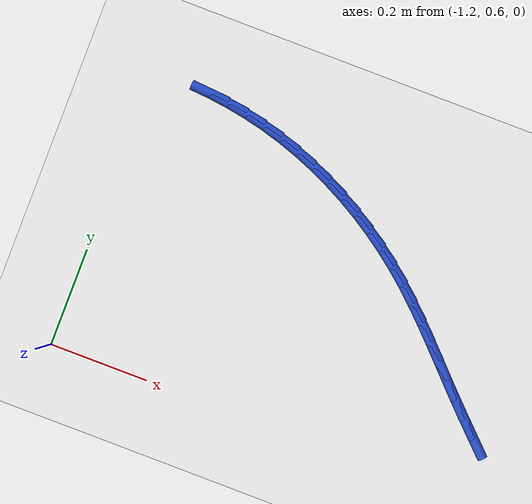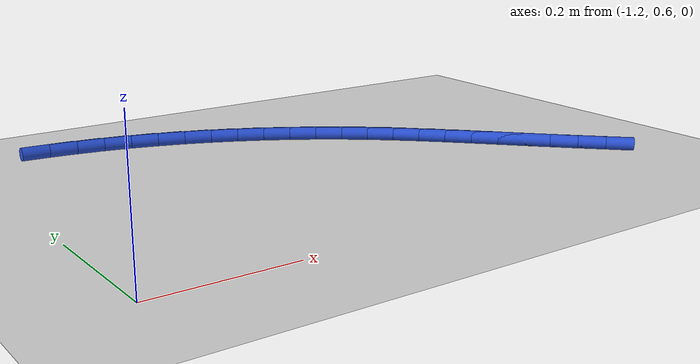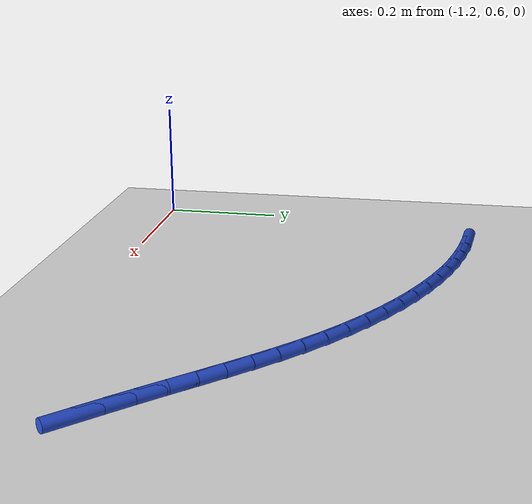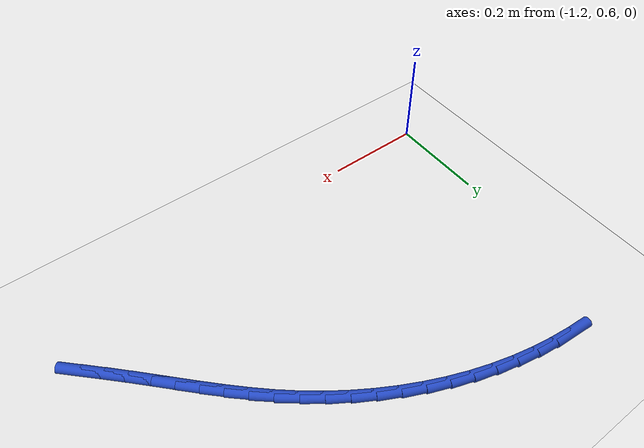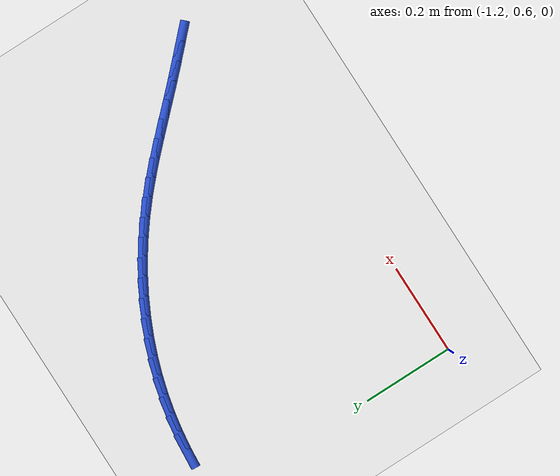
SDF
<sdf version="1.6">
 <world name="default">
  <model name="ground_plane">
   <static>1</static>
   <link name="link">
    <collision name="collision">
     <geometry><plane><normal>0 0 1</normal><size>100 100</size></plane></geometry>
     <surface><friction><ode><mu>100</mu><mu2>50</mu2></ode></friction></surface>
    </collision>
    <visual name="visual">
     <cast_shadows>0</cast_shadows>
     <geometry><plane><normal>0 0 1</normal><size>100 100</size></plane></geometry>
     <material>
      <script><uri>file://media/materials/scripts/gazebo.material</uri><name>Gazebo/WhiteGlow</name></script>
     </material>
    </visual>
   </link>
  </model>
  <model name="line">
   <link name="link_20">
    <pose>-0.3577589061286057 0.7191104925070084 0.01 0 1.57 -0.7757583546364858</pose>
    <collision name="collision">
     <geometry><cylinder><radius>0.01</radius><length>0.08</length></cylinder></geometry>
    </collision>
    <visual name="visual">
     <material>
      <script><name>Gazebo/Blue</name><uri>file://media/materials/scripts/gazebo.material</uri></script>
     </material>
     <geometry><cylinder><radius>0.01</radius><length>0.08</length></cylinder></geometry>
    </visual>
   </link>
   <link name="link_21">
    <pose>-0.38796208765742546 0.7487369102748199 0.01 0 1.57 -0.7827255534395113</pose>
    <collision name="collision">
     <geometry><cylinder><radius>0.01</radius><length>0.08</length></cylinder></geometry>
    </collision>
    <visual name="visual">
     <material>
      <script><name>Gazebo/Blue</name><uri>file://media/materials/scripts/gazebo.material</uri></script>
     </material>
     <geometry><cylinder><radius>0.01</radius><length>0.08</length></cylinder></geometry>
    </visual>
   </link>
   <link name="link_22">
    <pose>-0.41784457719016516 0.7784600967051386 0.01 0 1.57 -0.7942603477439405</pose>
    <collision name="collision">
     <geometry><cylinder><radius>0.01</radius><length>0.08</length></cylinder></geometry>
    </collision>
    <visual name="visual">
     <material>
      <script><name>Gazebo/Blue</name><uri>file://media/materials/scripts/gazebo.material</uri></script>
     </material>
     <geometry><cylinder><radius>0.01</radius><length>0.08</length></cylinder></geometry>
    </visual>
   </link>
   <link name="link_23">
    <pose>-0.44722399234699994 0.808364913408346 0.01 0 1.57 -0.8010249459513406</pose>
    <collision name="collision">
     <geometry><cylinder><radius>0.01</radius><length>0.08</length></cylinder></geometry>
    </collision>
    <visual name="visual">
     <material>
      <script><name>Gazebo/Blue</name><uri>file://media/materials/scripts/gazebo.material</uri></script>
     </material>
     <geometry><cylinder><radius>0.01</radius><length>0.08</length></cylinder></geometry>
    </visual>
   </link>
   <link name="link_24">
    <pose>-0.476250641501954 0.838313226497959 0.01 0 1.57 -0.7988324356967438</pose>
    <collision name="collision">
     <geometry><cylinder><radius>0.01</radius><length>0.08</length></cylinder></geometry>
    </collision>
    <visual name="visual">
     <material>
      <script><name>Gazebo/Blue</name><uri>file://media/materials/scripts/gazebo.material</uri></script>
     </material>
     <geometry><cylinder><radius>0.01</radius><length>0.08</length></cylinder></geometry>
    </visual>
   </link>
   <link name="link_25">
    <pose>-0.5052188235792384 0.8680703883013109 0.01 0 1.57 -0.7875572953811117</pose>
    <collision name="collision">
     <geometry><cylinder><radius>0.01</radius><length>0.08</length></cylinder></geometry>
    </collision>
    <visual name="visual">
     <material>
      <script><name>Gazebo/Blue</name><uri>file://media/materials/scripts/gazebo.material</uri></script>
     </material>
     <geometry><cylinder><radius>0.01</radius><length>0.08</length></cylinder></geometry>
    </visual>
   </link>
   <link name="link_26">
    <pose>-0.5344234138797878 0.8974013648127438 0.01 0 1.57 -0.7671465289753625</pose>
    <collision name="collision">
     <geometry><cylinder><radius>0.01</radius><length>0.08</length></cylinder></geometry>
    </collision>
    <visual name="visual">
     <material>
      <script><name>Gazebo/Blue</name><uri>file://media/materials/scripts/gazebo.material</uri></script>
     </material>
     <geometry><cylinder><radius>0.01</radius><length>0.08</length></cylinder></geometry>
    </visual>
   </link>
   <link name="link_27">
    <pose>-0.5641592877045366 0.9260711220265999 0.01 0 1.57 -0.7376329778385887</pose>
    <collision name="collision">
     <geometry><cylinder><radius>0.01</radius><length>0.08</length></cylinder></geometry>
    </collision>
    <visual name="visual">
     <material>
      <script><name>Gazebo/Blue</name><uri>file://media/materials/scripts/gazebo.material</uri></script>
     </material>
     <geometry><cylinder><radius>0.01</radius><length>0.08</length></cylinder></geometry>
    </visual>
   </link>
   <link name="link_28">
    <pose>-0.5947213203544199 0.9538446259372217 0.01 0 1.57 -0.6991984845940142</pose>
    <collision name="collision">
     <geometry><cylinder><radius>0.01</radius><length>0.08</length></cylinder></geometry>
    </collision>
    <visual name="visual">
     <material>
      <script><name>Gazebo/Blue</name><uri>file://media/materials/scripts/gazebo.material</uri></script>
     </material>
     <geometry><cylinder><radius>0.01</radius><length>0.08</length></cylinder></geometry>
    </visual>
   </link>
   <link name="link_29">
    <pose>-0.6264038226670672 0.9804870489868515 0.01 0 1.57 -0.6546484537541121</pose>
    <collision name="collision">
     <geometry><cylinder><radius>0.01</radius><length>0.08</length></cylinder></geometry>
    </collision>
    <visual name="visual">
     <material>
      <script><name>Gazebo/Blue</name><uri>file://media/materials/scripts/gazebo.material</uri></script>
     </material>
     <geometry><cylinder><radius>0.01</radius><length>0.08</length></cylinder></geometry>
    </visual>
   </link>
   <link name="link_30">
    <pose>-0.6593883280496291 1.0058048110530569 0.01 0 1.57 -0.6094801853400681</pose>
    <collision name="collision">
     <geometry><cylinder><radius>0.01</radius><length>0.08</length></cylinder></geometry>
    </collision>
    <visual name="visual">
     <material>
      <script><name>Gazebo/Blue</name><uri>file://media/materials/scripts/gazebo.material</uri></script>
     </material>
     <geometry><cylinder><radius>0.01</radius><length>0.08</length></cylinder></geometry>
    </visual>
   </link>
   <link name="link_31">
    <pose>-0.6936080502866613 1.0296951529119627 0.01 0 1.57 -0.564180259478845</pose>
    <collision name="collision">
     <geometry><cylinder><radius>0.01</radius><length>0.08</length></cylinder></geometry>
    </collision>
    <visual name="visual">
     <material>
      <script><name>Gazebo/Blue</name><uri>file://media/materials/scripts/gazebo.material</uri></script>
     </material>
     <geometry><cylinder><radius>0.01</radius><length>0.08</length></cylinder></geometry>
    </visual>
   </link>
   <link name="link_32">
    <pose>-0.7289631097116125 1.0520674190024433 0.01 0 1.57 -0.5185027385650475</pose>
    <collision name="collision">
     <geometry><cylinder><radius>0.01</radius><length>0.08</length></cylinder></geometry>
    </collision>
    <visual name="visual">
     <material>
      <script><name>Gazebo/Blue</name><uri>file://media/materials/scripts/gazebo.material</uri></script>
     </material>
     <geometry><cylinder><radius>0.01</radius><length>0.08</length></cylinder></geometry>
    </visual>
   </link>
   <link name="link_33">
    <pose>-0.7653536266579317 1.072830953763373 0.01 0 1.57 -0.47220728353582436</pose>
    <collision name="collision">
     <geometry><cylinder><radius>0.01</radius><length>0.08</length></cylinder></geometry>
    </collision>
    <visual name="visual">
     <material>
      <script><name>Gazebo/Blue</name><uri>file://media/materials/scripts/gazebo.material</uri></script>
     </material>
     <geometry><cylinder><radius>0.01</radius><length>0.08</length></cylinder></geometry>
    </visual>
   </link>
   <link name="link_34">
    <pose>-0.8026797214590681 1.0918951016336251 0.01 0 1.57 -0.42505917483939354</pose>
    <collision name="collision">
     <geometry><cylinder><radius>0.01</radius><length>0.08</length></cylinder></geometry>
    </collision>
    <visual name="visual">
     <material>
      <script><name>Gazebo/Blue</name><uri>file://media/materials/scripts/gazebo.material</uri></script>
     </material>
     <geometry><cylinder><radius>0.01</radius><length>0.08</length></cylinder></geometry>
    </visual>
   </link>
   <link name="link_35">
    <pose>-0.8408415144484703 1.1091692070520742 0.01 0 1.57 -0.3768300582452592</pose>
    <collision name="collision">
     <geometry><cylinder><radius>0.01</radius><length>0.08</length></cylinder></geometry>
    </collision>
    <visual name="visual">
     <material>
      <script><name>Gazebo/Blue</name><uri>file://media/materials/scripts/gazebo.material</uri></script>
     </material>
     <geometry><cylinder><radius>0.01</radius><length>0.08</length></cylinder></geometry>
    </visual>
   </link>
   <link name="link_36">
    <pose>-0.8797391259595877 1.124562614457594 0.01 0 1.57 -0.3272996272543197</pose>
    <collision name="collision">
     <geometry><cylinder><radius>0.01</radius><length>0.08</length></cylinder></geometry>
    </collision>
    <visual name="visual">
     <material>
      <script><name>Gazebo/Blue</name><uri>file://media/materials/scripts/gazebo.material</uri></script>
     </material>
     <geometry><cylinder><radius>0.01</radius><length>0.08</length></cylinder></geometry>
    </visual>
   </link>
   <link name="link_37">
    <pose>-0.9192726763258692 1.1379846682890589 0.01 0 1.57 -0.27625979984172294</pose>
    <collision name="collision">
     <geometry><cylinder><radius>0.01</radius><length>0.08</length></cylinder></geometry>
    </collision>
    <visual name="visual">
     <material>
      <script><name>Gazebo/Blue</name><uri>file://media/materials/scripts/gazebo.material</uri></script>
     </material>
     <geometry><cylinder><radius>0.01</radius><length>0.08</length></cylinder></geometry>
    </visual>
   </link>
   <link name="link_38">
    <pose>-0.9593423002767159 1.1493447749007104 0.01 0 1.57 -0.22440984350333143</pose>
    <collision name="collision">
     <geometry><cylinder><radius>0.01</radius><length>0.08</length></cylinder></geometry>
    </collision>
    <visual name="visual">
     <material>
      <script><name>Gazebo/Blue</name><uri>file://media/materials/scripts/gazebo.material</uri></script>
     </material>
     <geometry><cylinder><radius>0.01</radius><length>0.08</length></cylinder></geometry>
    </visual>
   </link>
   <link name="link_39">
    <pose>-0.9998574798112231 1.1585925421992922 0.01 0 1.57 -0.17413968294643584</pose>
    <collision name="collision">
     <geometry><cylinder><radius>0.01</radius><length>0.08</length></cylinder></geometry>
    </collision>
    <visual name="visual">
     <material>
      <script><name>Gazebo/Blue</name><uri>file://media/materials/scripts/gazebo.material</uri></script>
     </material>
     <geometry><cylinder><radius>0.01</radius><length>0.08</length></cylinder></geometry>
    </visual>
   </link>
   <link name="link_40">
    <pose>-1.0407531312372884 1.1657869681845168 0.01 0 1.57 -0.12594567128181372</pose>
    <collision name="collision">
     <geometry><cylinder><radius>0.01</radius><length>0.08</length></cylinder></geometry>
    </collision>
    <visual name="visual">
     <material>
      <script><name>Gazebo/Blue</name><uri>file://media/materials/scripts/gazebo.material</uri></script>
     </material>
     <geometry><cylinder><radius>0.01</radius><length>0.08</length></cylinder></geometry>
    </visual>
   </link>
   <link name="link_41">
    <pose>-1.081968456231779 1.1710054817446083 0.01 0 1.57 -0.07988015375008775</pose>
    <collision name="collision">
     <geometry><cylinder><radius>0.01</radius><length>0.08</length></cylinder></geometry>
    </collision>
    <visual name="visual">
     <material>
      <script><name>Gazebo/Blue</name><uri>file://media/materials/scripts/gazebo.material</uri></script>
     </material>
     <geometry><cylinder><radius>0.01</radius><length>0.08</length></cylinder></geometry>
    </visual>
   </link>
  </model>
 </world>
</sdf>
